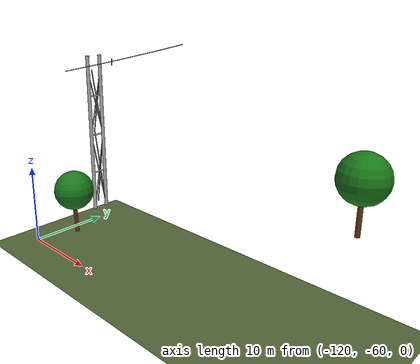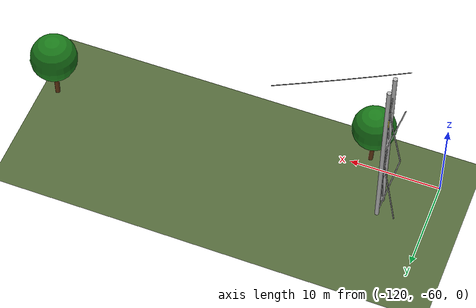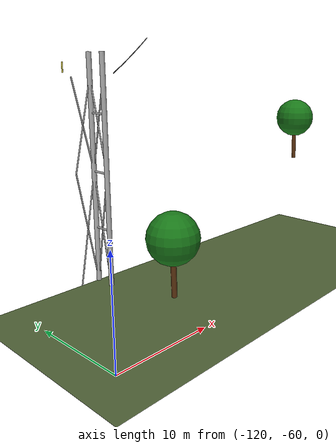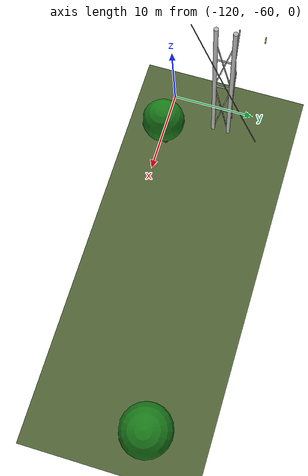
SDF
<sdf version="1.9">
 <world name="power_line_inspection">
  <model name="ground_plane">
   <static>true</static>
   <pose>0 0 -0.01 0 0 0</pose>
   <link name="link">
    <collision name="collision">
     <geometry><plane><normal>0 0 1</normal><size>600 600</size></plane></geometry>
     <surface><friction><ode><mu>1.0</mu><mu2>1.0</mu2></ode></friction></surface>
    </collision>
    <visual name="visual">
     <cast_shadows>false</cast_shadows>
     <geometry><plane><normal>0 0 1</normal><size>600 600</size></plane></geometry>
     <material>
      <ambient>0.28 0.35 0.18 1</ambient>
      <diffuse>0.32 0.40 0.22 1</diffuse>
      <specular>0.02 0.02 0.02 1</specular>
     </material>
    </visual>
   </link>
  </model>
  <model name="base_tower_col1-1">
   <static>true</static>
   <pose>-115.416 -53.795 14.000 0.00000 0.00000 0.00000</pose>
   <link name="link">
    <visual name="v">
     <geometry><cylinder><radius>0.22</radius><length>20.0000</length></cylinder></geometry>
     <material><ambient>0.72 0.72 0.72 1</ambient><diffuse>0.72 0.72 0.72 1</diffuse></material>
    </visual>
    <collision name="c">
     <geometry><cylinder><radius>0.22</radius><length>20.0000</length></cylinder></geometry>
    </collision>
   </link>
  </model>
  <model name="base_tower_col11">
   <static>true</static>
   <pose>-115.416 -51.995 14.000 0.00000 0.00000 0.00000</pose>
   <link name="link">
    <visual name="v">
     <geometry><cylinder><radius>0.22</radius><length>20.0000</length></cylinder></geometry>
     <material><ambient>0.72 0.72 0.72 1</ambient><diffuse>0.72 0.72 0.72 1</diffuse></material>
    </visual>
    <collision name="c">
     <geometry><cylinder><radius>0.22</radius><length>20.0000</length></cylinder></geometry>
    </collision>
   </link>
  </model>
  <model name="base_tower_b1_e2">
   <static>true</static>
   <pose>-115.416 -52.895 9.000 1.57080 0.00000 0.00000</pose>
   <link name="link">
    <visual name="v">
     <geometry><cylinder><radius>0.09</radius><length>1.8000</length></cylinder></geometry>
     <material><ambient>0.68 0.68 0.68 1</ambient><diffuse>0.68 0.68 0.68 1</diffuse></material>
    </visual>
    <collision name="c">
     <geometry><cylinder><radius>0.09</radius><length>1.8000</length></cylinder></geometry>
    </collision>
   </link>
  </model>
  <model name="base_tower_b2_e2">
   <static>true</static>
   <pose>-115.416 -52.895 14.000 1.57080 0.00000 0.00000</pose>
   <link name="link">
    <visual name="v">
     <geometry><cylinder><radius>0.09</radius><length>1.8000</length></cylinder></geometry>
     <material><ambient>0.68 0.68 0.68 1</ambient><diffuse>0.68 0.68 0.68 1</diffuse></material>
    </visual>
    <collision name="c">
     <geometry><cylinder><radius>0.09</radius><length>1.8000</length></cylinder></geometry>
    </collision>
   </link>
  </model>
  <model name="base_tower_b3_e2">
   <static>true</static>
   <pose>-115.416 -52.895 19.000 1.57080 0.00000 0.00000</pose>
   <link name="link">
    <visual name="v">
     <geometry><cylinder><radius>0.09</radius><length>1.8000</length></cylinder></geometry>
     <material><ambient>0.68 0.68 0.68 1</ambient><diffuse>0.68 0.68 0.68 1</diffuse></material>
    </visual>
    <collision name="c">
     <geometry><cylinder><radius>0.09</radius><length>1.8000</length></cylinder></geometry>
    </collision>
   </link>
  </model>
  <model name="base_tower_diag1_0a">
   <static>true</static>
   <pose>-115.416 -52.895 9.000 -0.17809 0.00000 0.00000</pose>
   <link name="link">
    <visual name="v">
     <geometry><cylinder><radius>0.063</radius><length>10.1607</length></cylinder></geometry>
     <material><ambient>0.65 0.65 0.65 1</ambient><diffuse>0.65 0.65 0.65 1</diffuse></material>
    </visual>
    <collision name="c">
     <geometry><cylinder><radius>0.063</radius><length>10.1607</length></cylinder></geometry>
    </collision>
   </link>
  </model>
  <model name="base_tower_diag1_0b">
   <static>true</static>
   <pose>-115.416 -52.895 9.000 0.17809 0.00000 0.00000</pose>
   <link name="link">
    <visual name="v">
     <geometry><cylinder><radius>0.063</radius><length>10.1607</length></cylinder></geometry>
     <material><ambient>0.65 0.65 0.65 1</ambient><diffuse>0.65 0.65 0.65 1</diffuse></material>
    </visual>
    <collision name="c">
     <geometry><cylinder><radius>0.063</radius><length>10.1607</length></cylinder></geometry>
    </collision>
   </link>
  </model>
  <model name="base_tower_diag1_1a">
   <static>true</static>
   <pose>-115.416 -52.895 18.000 -0.22131 0.00000 0.00000</pose>
   <link name="link">
    <visual name="v">
     <geometry><cylinder><radius>0.063</radius><length>8.2000</length></cylinder></geometry>
     <material><ambient>0.65 0.65 0.65 1</ambient><diffuse>0.65 0.65 0.65 1</diffuse></material>
    </visual>
    <collision name="c">
     <geometry><cylinder><radius>0.063</radius><length>8.2000</length></cylinder></geometry>
    </collision>
   </link>
  </model>
  <model name="base_tower_diag1_1b">
   <static>true</static>
   <pose>-115.416 -52.895 18.000 0.22131 0.00000 0.00000</pose>
   <link name="link">
    <visual name="v">
     <geometry><cylinder><radius>0.063</radius><length>8.2000</length></cylinder></geometry>
     <material><ambient>0.65 0.65 0.65 1</ambient><diffuse>0.65 0.65 0.65 1</diffuse></material>
    </visual>
    <collision name="c">
     <geometry><cylinder><radius>0.063</radius><length>8.2000</length></cylinder></geometry>
    </collision>
   </link>
  </model>
  <model name="base_tower_diag3_0a">
   <static>true</static>
   <pose>-116.316 -51.995 9.000 0.00000 0.17809 0.00000</pose>
   <link name="link">
    <visual name="v">
     <geometry><cylinder><radius>0.063</radius><length>10.1607</length></cylinder></geometry>
     <material><ambient>0.65 0.65 0.65 1</ambient><diffuse>0.65 0.65 0.65 1</diffuse></material>
    </visual>
    <collision name="c">
     <geometry><cylinder><radius>0.063</radius><length>10.1607</length></cylinder></geometry>
    </collision>
   </link>
  </model>
  <model name="base_tower_diag3_0b">
   <static>true</static>
   <pose>-116.316 -51.995 9.000 0.00000 -0.17809 0.00000</pose>
   <link name="link">
    <visual name="v">
     <geometry><cylinder><radius>0.063</radius><length>10.1607</length></cylinder></geometry>
     <material><ambient>0.65 0.65 0.65 1</ambient><diffuse>0.65 0.65 0.65 1</diffuse></material>
    </visual>
    <collision name="c">
     <geometry><cylinder><radius>0.063</radius><length>10.1607</length></cylinder></geometry>
    </collision>
   </link>
  </model>
  <model name="base_tower_diag3_1a">
   <static>true</static>
   <pose>-116.316 -51.995 18.000 0.00000 0.22131 0.00000</pose>
   <link name="link">
    <visual name="v">
     <geometry><cylinder><radius>0.063</radius><length>8.2000</length></cylinder></geometry>
     <material><ambient>0.65 0.65 0.65 1</ambient><diffuse>0.65 0.65 0.65 1</diffuse></material>
    </visual>
    <collision name="c">
     <geometry><cylinder><radius>0.063</radius><length>8.2000</length></cylinder></geometry>
    </collision>
   </link>
  </model>
  <model name="base_tower_diag3_1b">
   <static>true</static>
   <pose>-116.316 -51.995 18.000 0.00000 -0.22131 0.00000</pose>
   <link name="link">
    <visual name="v">
     <geometry><cylinder><radius>0.063</radius><length>8.2000</length></cylinder></geometry>
     <material><ambient>0.65 0.65 0.65 1</ambient><diffuse>0.65 0.65 0.65 1</diffuse></material>
    </visual>
    <collision name="c">
     <geometry><cylinder><radius>0.063</radius><length>8.2000</length></cylinder></geometry>
    </collision>
   </link>
  </model>
  <model name="base_tower_insR">
   <static>true</static>
   <pose>-116.316 -49.395 22.750 3.14159 0.00000 0.00000</pose>
   <link name="link">
    <visual name="v">
     <geometry><cylinder><radius>0.06</radius><length>0.9000</length></cylinder></geometry>
     <material><ambient>0.9 0.85 0.3 1</ambient><diffuse>0.9 0.85 0.3 1</diffuse></material>
    </visual>
    <collision name="c">
     <geometry><cylinder><radius>0.06</radius><length>0.9000</length></cylinder></geometry>
    </collision>
   </link>
  </model>
  <model name="wire_L_s00">
   <static>true</static>
   <pose>-114.930 -55.302 22.678 -1.23701 0.87561 -0.64313</pose>
   <link name="link">
    <visual name="v">
     <geometry><cylinder><radius>0.04</radius><length>3.6101</length></cylinder></geometry>
     <material><ambient>0.08 0.08 0.08 1</ambient><diffuse>0.08 0.08 0.08 1</diffuse></material>
    </visual>
    <collision name="c">
     <geometry><cylinder><radius>0.04</radius><length>3.6101</length></cylinder></geometry>
    </collision>
   </link>
  </model>
  <model name="wire_L_s01">
   <static>true</static>
   <pose>-112.157 -53.118 23.458 -1.21921 0.87248 -0.62947</pose>
   <link name="link">
    <visual name="v">
     <geometry><cylinder><radius>0.04</radius><length>3.6195</length></cylinder></geometry>
     <material><ambient>0.08 0.08 0.08 1</ambient><diffuse>0.08 0.08 0.08 1</diffuse></material>
    </visual>
    <collision name="c">
     <geometry><cylinder><radius>0.04</radius><length>3.6195</length></cylinder></geometry>
    </collision>
   </link>
  </model>
  <model name="wire_L_s02">
   <static>true</static>
   <pose>-109.385 -50.933 24.281 -1.20164 0.86922 -0.61603</pose>
   <link name="link">
    <visual name="v">
     <geometry><cylinder><radius>0.04</radius><length>3.6295</length></cylinder></geometry>
     <material><ambient>0.08 0.08 0.08 1</ambient><diffuse>0.08 0.08 0.08 1</diffuse></material>
    </visual>
    <collision name="c">
     <geometry><cylinder><radius>0.04</radius><length>3.6295</length></cylinder></geometry>
    </collision>
   </link>
  </model>
  <model name="wire_L_s03">
   <static>true</static>
   <pose>-106.613 -48.748 25.148 -1.18430 0.86582 -0.60281</pose>
   <link name="link">
    <visual name="v">
     <geometry><cylinder><radius>0.04</radius><length>3.6399</length></cylinder></geometry>
     <material><ambient>0.08 0.08 0.08 1</ambient><diffuse>0.08 0.08 0.08 1</diffuse></material>
    </visual>
    <collision name="c">
     <geometry><cylinder><radius>0.04</radius><length>3.6399</length></cylinder></geometry>
    </collision>
   </link>
  </model>
  <model name="tree_00">
   <static>true</static>
   <pose>-112.57 -58.74 3.43 0 0 1.11</pose>
   <link name="link">
    <visual name="trunk">
     <pose>0 0 2.007 -0.033 -0.037 0</pose>
     <geometry><cylinder><radius>0.248</radius><length>4.015</length></cylinder></geometry>
     <material><ambient>0.32 0.18 0.05 1</ambient><diffuse>0.38 0.21 0.07 1</diffuse></material>
    </visual>
    <collision name="trunk_c">
     <pose>0 0 2.007 0 0 0</pose>
     <geometry><cylinder><radius>0.248</radius><length>4.015</length></cylinder></geometry>
    </collision>
    <visual name="canopy">
     <pose>0 0 5.299 0 0 0</pose>
     <geometry><sphere><radius>2.336</radius></sphere></geometry>
     <material><ambient>0.07 0.38 0.07 1</ambient><diffuse>0.10 0.48 0.10 1</diffuse></material>
    </visual>
    <collision name="canopy_c">
     <pose>0 0 5.299 0 0 0</pose>
     <geometry><sphere><radius>2.336</radius></sphere></geometry>
    </collision>
   </link>
  </model>
  <model name="tree_07">
   <static>true</static>
   <pose>-81.14 -50.12 10.54 0 0 0.56</pose>
   <link name="link">
    <visual name="trunk">
     <pose>0 0 2.086 -0.020 0.001 0</pose>
     <geometry><cylinder><radius>0.251</radius><length>4.171</length></cylinder></geometry>
     <material><ambient>0.32 0.18 0.05 1</ambient><diffuse>0.38 0.21 0.07 1</diffuse></material>
    </visual>
    <collision name="trunk_c">
     <pose>0 0 2.086 0 0 0</pose>
     <geometry><cylinder><radius>0.251</radius><length>4.171</length></cylinder></geometry>
    </collision>
    <visual name="canopy">
     <pose>0 0 5.506 0 0 0</pose>
     <geometry><sphere><radius>2.427</radius></sphere></geometry>
     <material><ambient>0.07 0.38 0.07 1</ambient><diffuse>0.10 0.48 0.10 1</diffuse></material>
    </visual>
    <collision name="canopy_c">
     <pose>0 0 5.506 0 0 0</pose>
     <geometry><sphere><radius>2.427</radius></sphere></geometry>
    </collision>
   </link>
  </model>
 </world>
</sdf>
